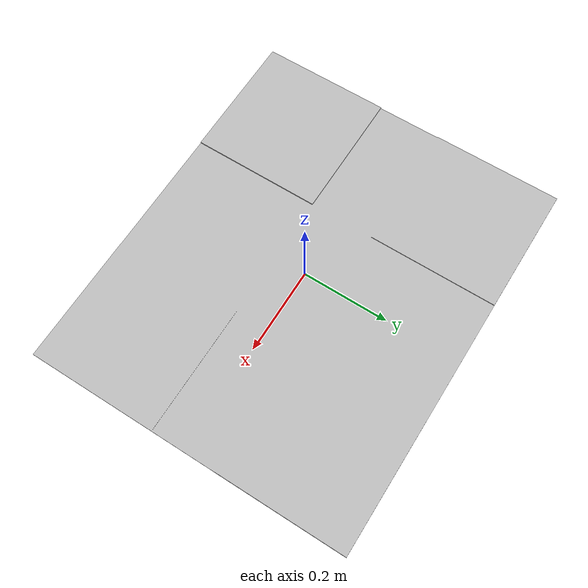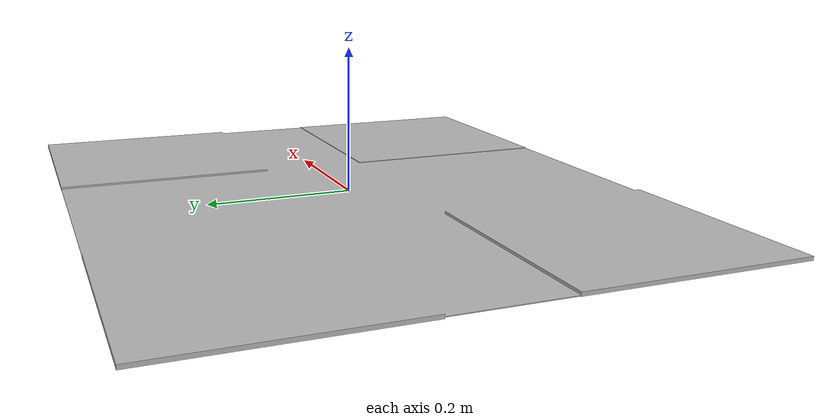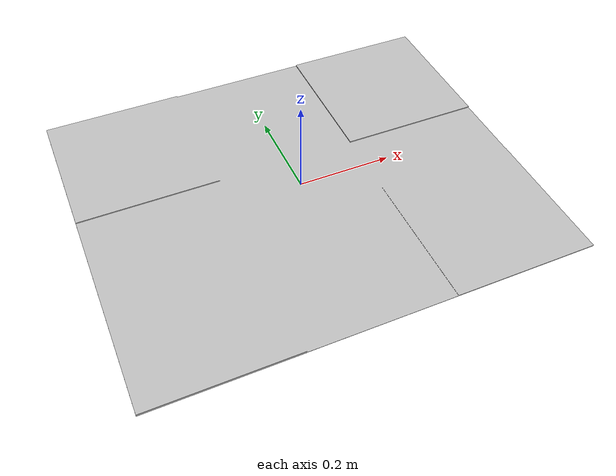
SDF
<?xml version='1.0'?>
<sdf version='1.9'>
  <model name='aruco_Target'>
    <link name='link_aruco'>
      <pose>0 0 0 0 0 0</pose>
      <inertial>
        <pose>0 0 0 0 0 -1.57079633</pose>
        <mass>0.2</mass>
        <inertia>
          <ixx>0.0411</ixx>
          <ixy>0</ixy>
          <ixz>0</ixz>
          <iyy>0.0478</iyy>
          <iyz>0</iyz>
          <izz>0.0599</izz>
        </inertia>
      </inertial>
      <self_collide>0</self_collide>

      <collision name='Collision'>
        <pose>0 0 0 0 0 -1.57079633</pose>
        <geometry>
          <box>
            <size>0.90 0.75 0.001</size>
          </box>
        </geometry>
      </collision>

      <visual name='visual'>
        <pose>0 0 0 0 0 -1.57079633</pose>
        <geometry>
          <mesh>
            <uri>model://aruco_target/meshes/Target2.dae</uri>
            <scale>1 1 1</scale>
          </mesh>
        </geometry>
        <cast_shadows>0</cast_shadows>
        <transparency>0</transparency>
      </visual>
    </link>
    <static>0</static>
    <allow_auto_disable>0</allow_auto_disable>
  </model>
</sdf>
